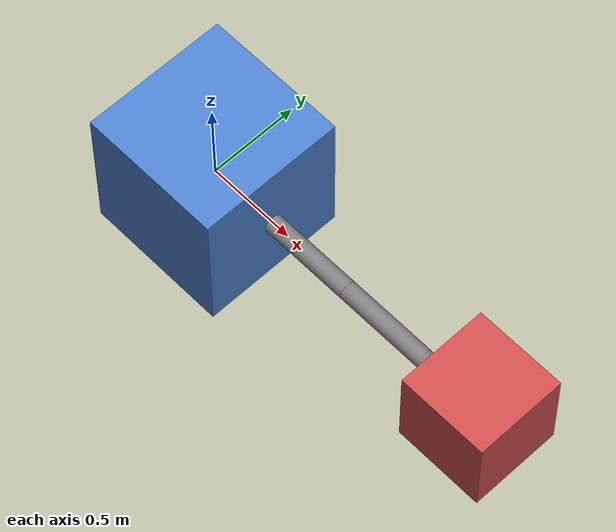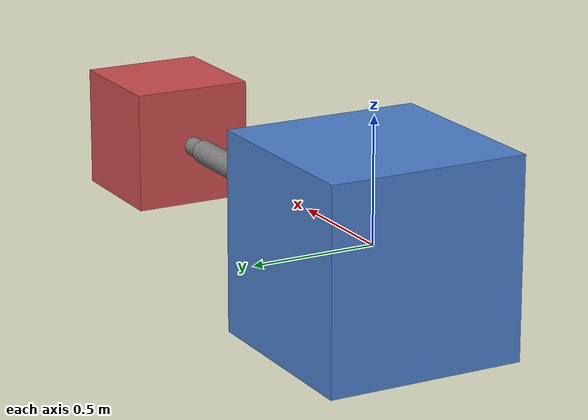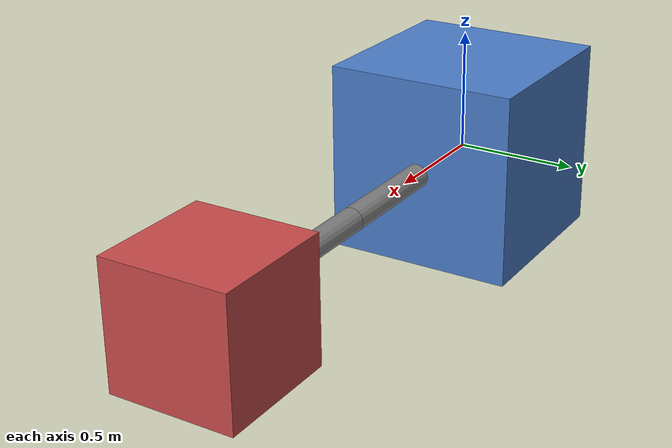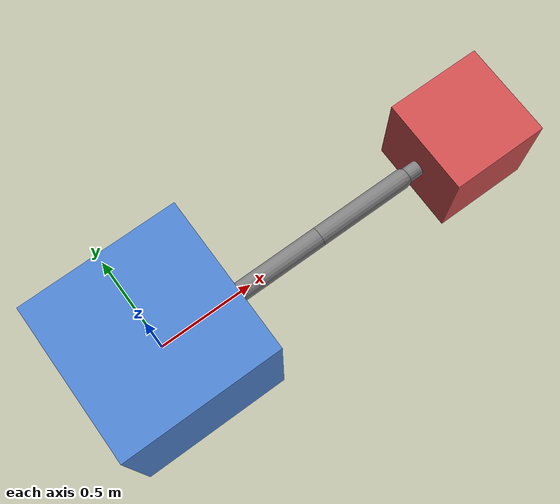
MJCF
<mujoco model="free_flyer_capture">
  <option gravity="0 0 0" timestep="0.002" integrator="implicitfast"/>
  <compiler angle="radian"/>

  <default>
    <joint armature="0.01" damping="0.2"/>
    <geom density="500" friction="1 0.05 0.001" solref="0.01 1" solimp="0.9 0.95 0.001"/>
  </default>

  <worldbody>
    <!-- Chaser: free-floating base + 3-DOF arm -->
    <body name="base" pos="0 0 0">
      <freejoint name="base_free"/>
      <geom name="base_geom" type="box" size="0.4 0.4 0.4" rgba="0.30 0.50 0.80 1"/>
      <body name="link1" pos="0.4 0 0">
        <joint name="j1" type="hinge" axis="0 0 1"/>
        <geom name="l1" type="capsule" fromto="0 0 0 0.5 0 0" size="0.05"/>
        <body name="link2" pos="0.5 0 0">
          <joint name="j2" type="hinge" axis="0 0 1"/>
          <geom name="l2" type="capsule" fromto="0 0 0 0.5 0 0" size="0.05"/>
          <body name="link3" pos="0.5 0 0">
            <joint name="j3" type="hinge" axis="0 0 1"/>
            <geom name="l3" type="capsule" fromto="0 0 0 0.3 0 0" size="0.04"/>
            <site name="ee" pos="0.3 0 0" size="0.03" rgba="0 1 0 1"/>
          </body>
        </body>
      </body>
    </body>

    <body name="target" pos="1.75 0 0">
      <freejoint name="target_free"/>
      <geom name="target_geom" type="box" size="0.25 0.25 0.25" rgba="0.80 0.30 0.30 1"/>
      <site name="grasp" pos="-0.25 0 0" size="0.03" rgba="1 1 0 1"/>
    </body>
  </worldbody>

  <actuator>
    <motor name="m1" joint="j1" gear="1" ctrlrange="-5 5"/>
    <motor name="m2" joint="j2" gear="1" ctrlrange="-5 5"/>
    <motor name="m3" joint="j3" gear="1" ctrlrange="-5 5"/>
  </actuator>
</mujoco>
